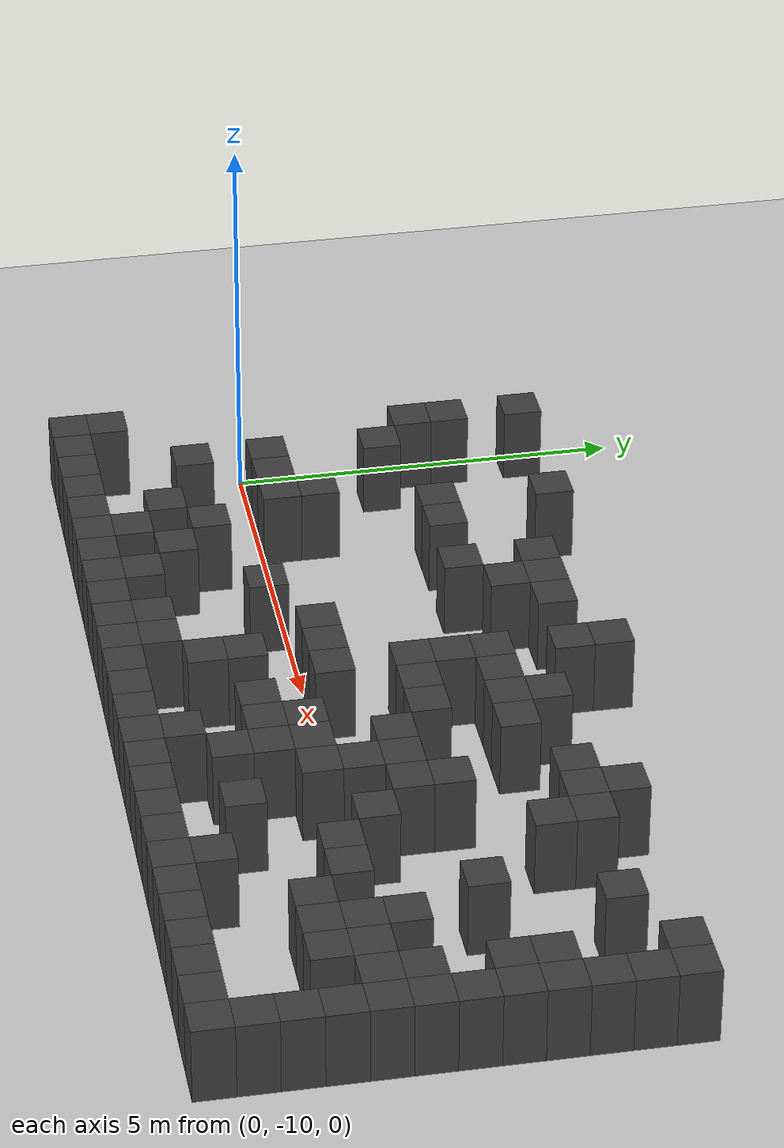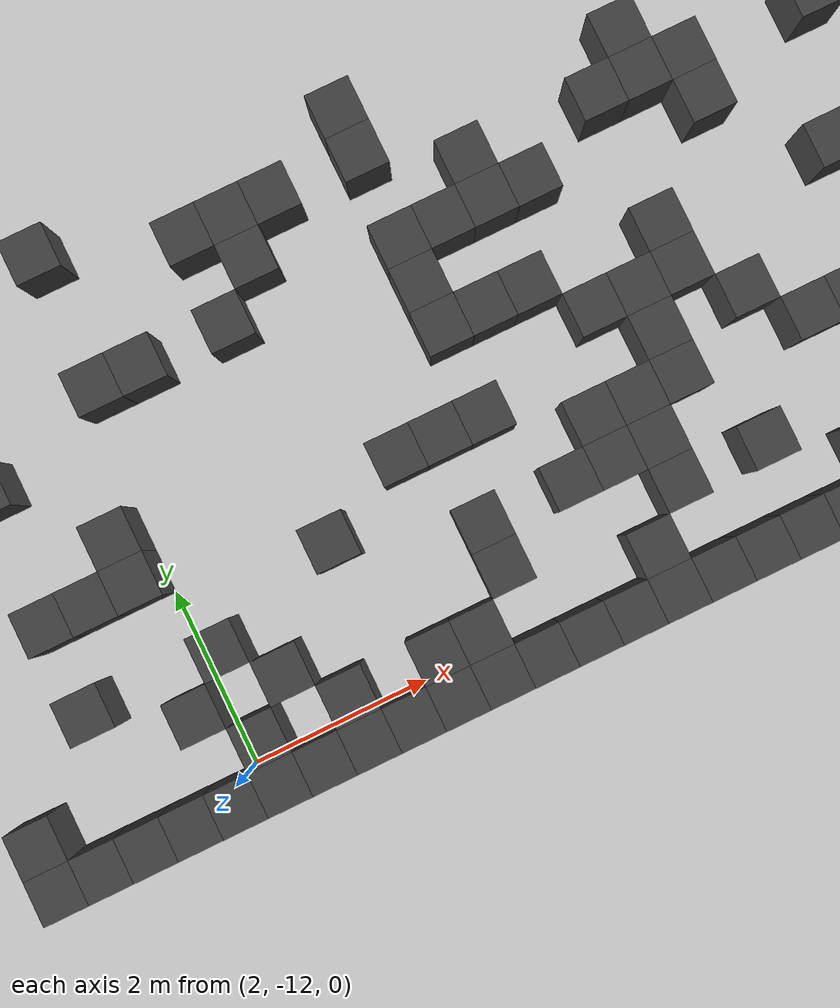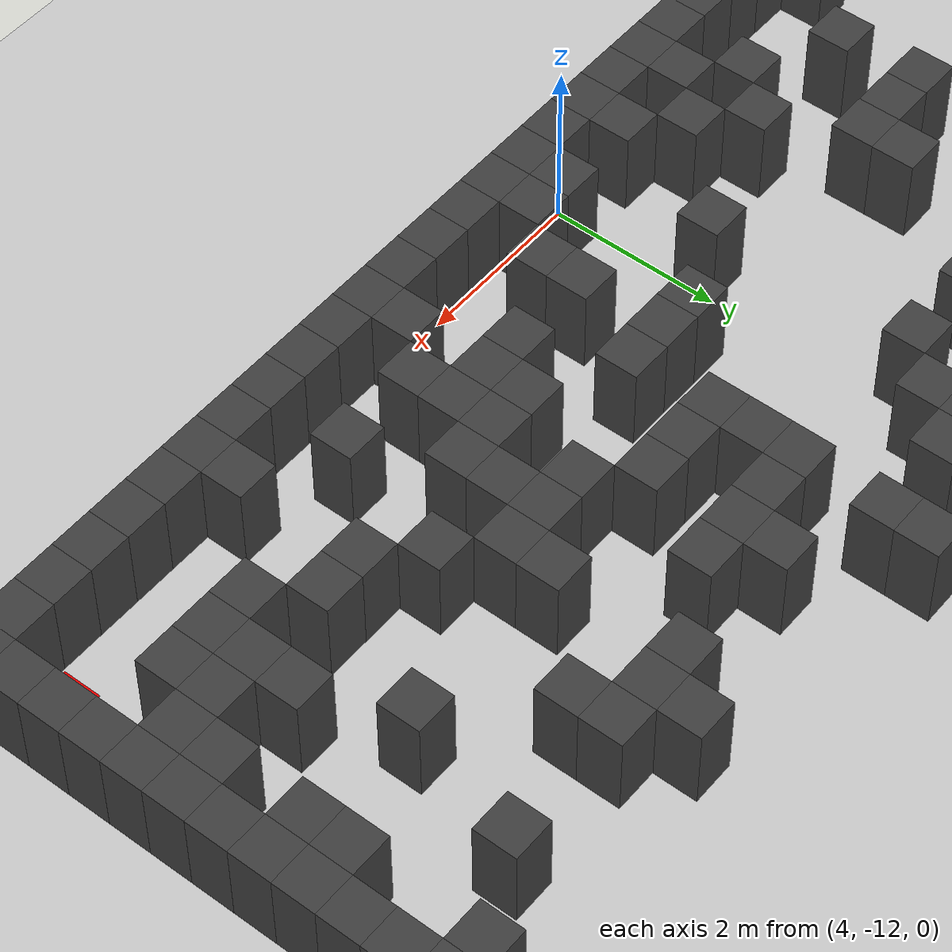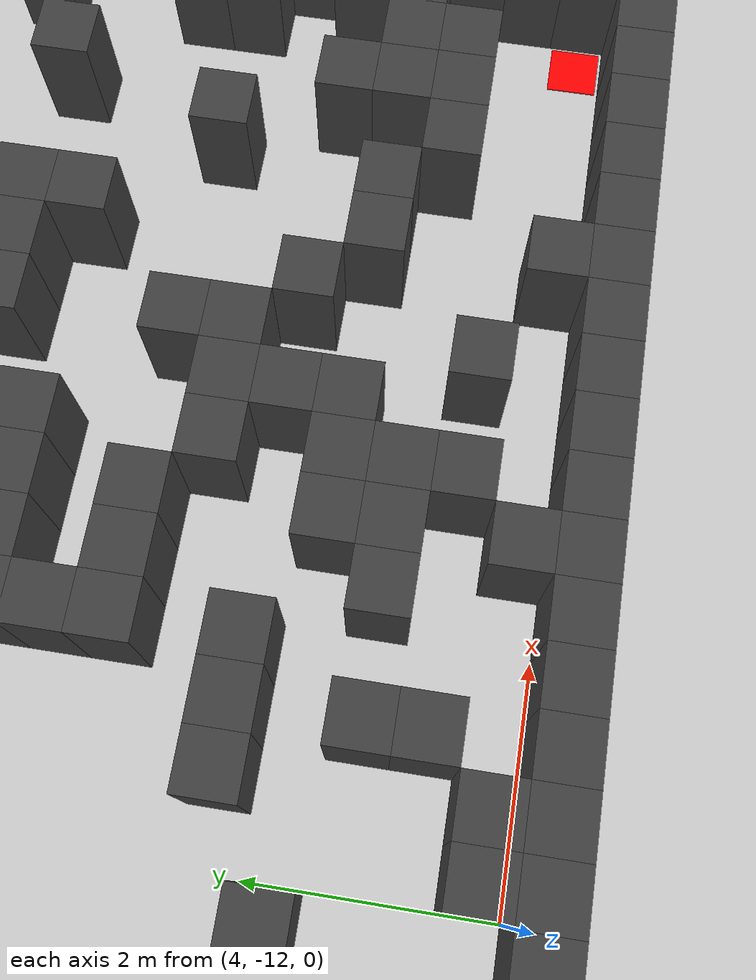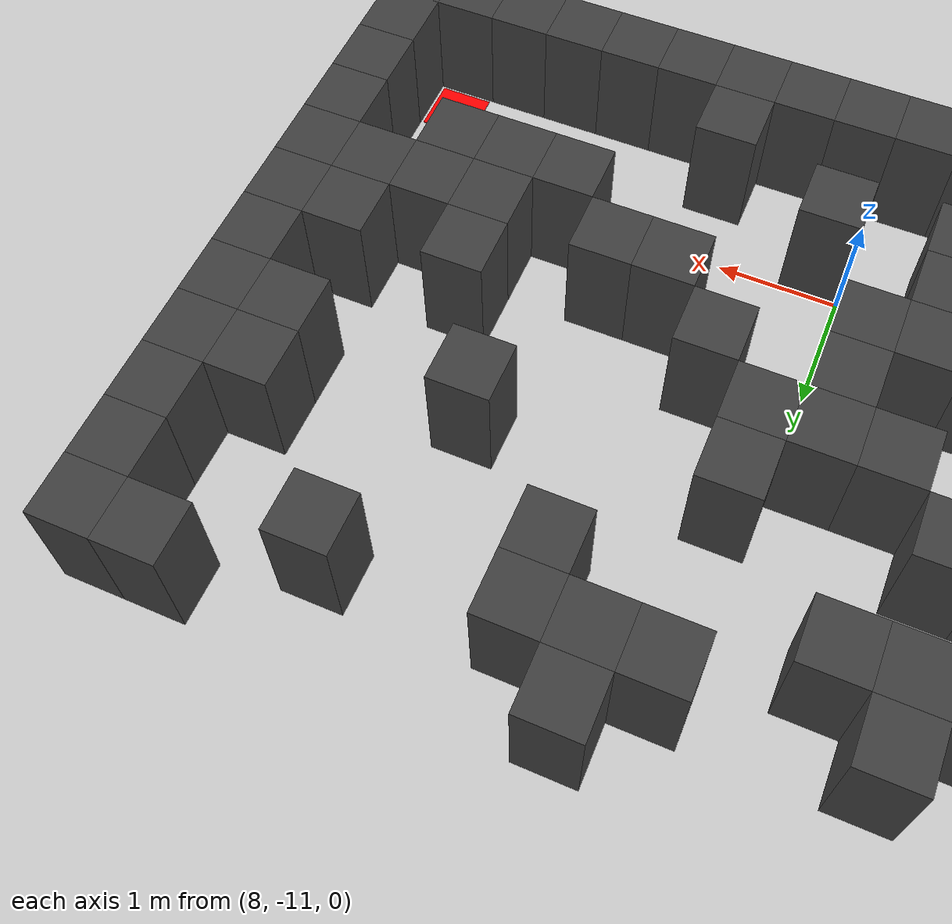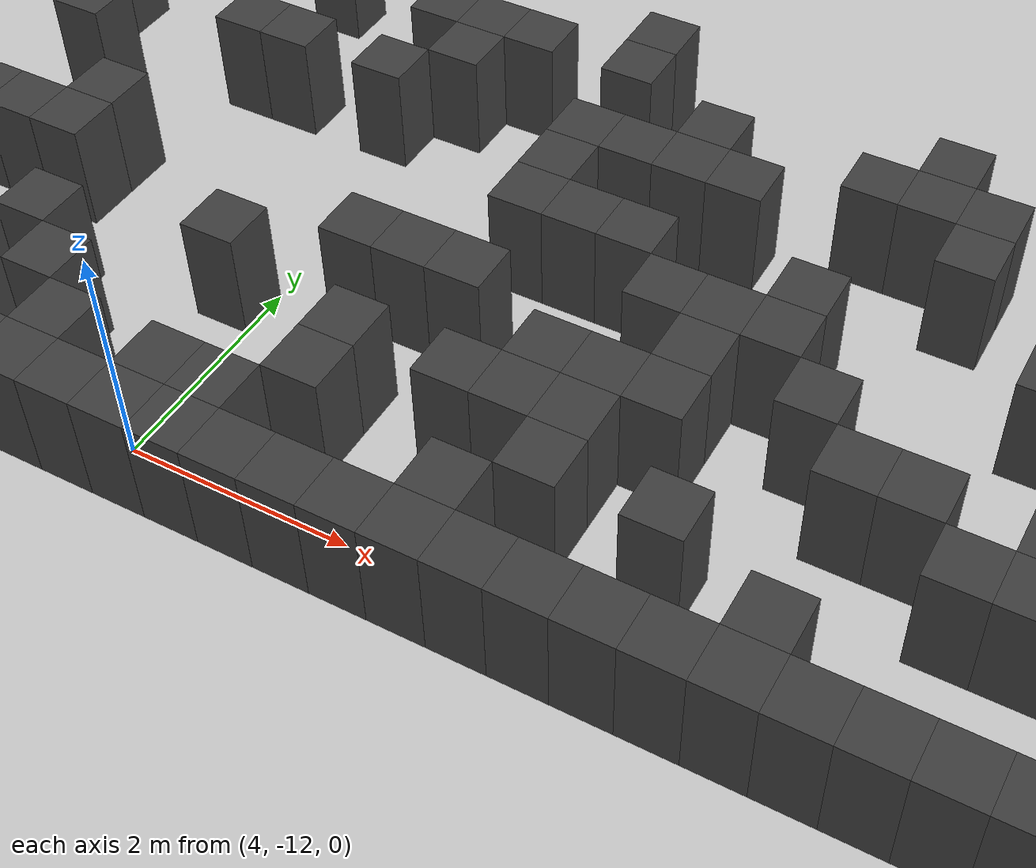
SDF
<sdf version="1.7">
 <world name="map_4492">
  <model name="ground_plane">
   <static>true</static>
   <link name="link">
    <collision name="collision">
     <geometry><plane><normal>0 0 1</normal><size>200 200</size></plane></geometry>
    </collision>
    <visual name="visual">
     <geometry><plane><normal>0 0 1</normal><size>200 200</size></plane></geometry>
     <material><ambient>0.8 0.8 0.8 1</ambient><diffuse>0.8 0.8 0.8 1</diffuse></material>
    </visual>
   </link>
  </model>
  <model name="maze_environment">
   <static>true</static>
   <link name="wall_479">
    <pose>0.250 -6.250 0.500 0 0 0</pose>
    <collision name="col"><geometry><box><size>0.5 0.5 1.0</size></box></geometry></collision>
    <visual name="vis">
     <geometry><box><size>0.5 0.5 1.0</size></box></geometry>
     <material><ambient>0.15 0.15 0.15 1</ambient><diffuse>0.25 0.25 0.25 1</diffuse></material>
    </visual>
   </link>
   <link name="wall_480">
    <pose>2.250 -6.250 0.500 0 0 0</pose>
    <collision name="col"><geometry><box><size>0.5 0.5 1.0</size></box></geometry></collision>
    <visual name="vis">
     <geometry><box><size>0.5 0.5 1.0</size></box></geometry>
     <material><ambient>0.15 0.15 0.15 1</ambient><diffuse>0.25 0.25 0.25 1</diffuse></material>
    </visual>
   </link>
   <link name="wall_481">
    <pose>5.750 -6.250 0.500 0 0 0</pose>
    <collision name="col"><geometry><box><size>0.5 0.5 1.0</size></box></geometry></collision>
    <visual name="vis">
     <geometry><box><size>0.5 0.5 1.0</size></box></geometry>
     <material><ambient>0.15 0.15 0.15 1</ambient><diffuse>0.25 0.25 0.25 1</diffuse></material>
    </visual>
   </link>
   <link name="wall_489">
    <pose>3.750 -6.750 0.500 0 0 0</pose>
    <collision name="col"><geometry><box><size>0.5 0.5 1.0</size></box></geometry></collision>
    <visual name="vis">
     <geometry><box><size>0.5 0.5 1.0</size></box></geometry>
     <material><ambient>0.15 0.15 0.15 1</ambient><diffuse>0.25 0.25 0.25 1</diffuse></material>
    </visual>
   </link>
   <link name="wall_490">
    <pose>4.250 -6.750 0.500 0 0 0</pose>
    <collision name="col"><geometry><box><size>0.5 0.5 1.0</size></box></geometry></collision>
    <visual name="vis">
     <geometry><box><size>0.5 0.5 1.0</size></box></geometry>
     <material><ambient>0.15 0.15 0.15 1</ambient><diffuse>0.25 0.25 0.25 1</diffuse></material>
    </visual>
   </link>
   <link name="wall_491">
    <pose>4.750 -6.750 0.500 0 0 0</pose>
    <collision name="col"><geometry><box><size>0.5 0.5 1.0</size></box></geometry></collision>
    <visual name="vis">
     <geometry><box><size>0.5 0.5 1.0</size></box></geometry>
     <material><ambient>0.15 0.15 0.15 1</ambient><diffuse>0.25 0.25 0.25 1</diffuse></material>
    </visual>
   </link>
   <link name="wall_492">
    <pose>5.750 -6.750 0.500 0 0 0</pose>
    <collision name="col"><geometry><box><size>0.5 0.5 1.0</size></box></geometry></collision>
    <visual name="vis">
     <geometry><box><size>0.5 0.5 1.0</size></box></geometry>
     <material><ambient>0.15 0.15 0.15 1</ambient><diffuse>0.25 0.25 0.25 1</diffuse></material>
    </visual>
   </link>
   <link name="wall_493">
    <pose>8.750 -6.750 0.500 0 0 0</pose>
    <collision name="col"><geometry><box><size>0.5 0.5 1.0</size></box></geometry></collision>
    <visual name="vis">
     <geometry><box><size>0.5 0.5 1.0</size></box></geometry>
     <material><ambient>0.15 0.15 0.15 1</ambient><diffuse>0.25 0.25 0.25 1</diffuse></material>
    </visual>
   </link>
   <link name="wall_494">
    <pose>11.750 -6.750 0.500 0 0 0</pose>
    <collision name="col"><geometry><box><size>0.5 0.5 1.0</size></box></geometry></collision>
    <visual name="vis">
     <geometry><box><size>0.5 0.5 1.0</size></box></geometry>
     <material><ambient>0.15 0.15 0.15 1</ambient><diffuse>0.25 0.25 0.25 1</diffuse></material>
    </visual>
   </link>
   <link name="wall_495">
    <pose>12.250 -6.750 0.500 0 0 0</pose>
    <collision name="col"><geometry><box><size>0.5 0.5 1.0</size></box></geometry></collision>
    <visual name="vis">
     <geometry><box><size>0.5 0.5 1.0</size></box></geometry>
     <material><ambient>0.15 0.15 0.15 1</ambient><diffuse>0.25 0.25 0.25 1</diffuse></material>
    </visual>
   </link>
   <link name="wall_502">
    <pose>0.250 -7.250 0.500 0 0 0</pose>
    <collision name="col"><geometry><box><size>0.5 0.5 1.0</size></box></geometry></collision>
    <visual name="vis">
     <geometry><box><size>0.5 0.5 1.0</size></box></geometry>
     <material><ambient>0.15 0.15 0.15 1</ambient><diffuse>0.25 0.25 0.25 1</diffuse></material>
    </visual>
   </link>
   <link name="wall_503">
    <pose>4.250 -7.250 0.500 0 0 0</pose>
    <collision name="col"><geometry><box><size>0.5 0.5 1.0</size></box></geometry></collision>
    <visual name="vis">
     <geometry><box><size>0.5 0.5 1.0</size></box></geometry>
     <material><ambient>0.15 0.15 0.15 1</ambient><diffuse>0.25 0.25 0.25 1</diffuse></material>
    </visual>
   </link>
   <link name="wall_504">
    <pose>6.750 -7.250 0.500 0 0 0</pose>
    <collision name="col"><geometry><box><size>0.5 0.5 1.0</size></box></geometry></collision>
    <visual name="vis">
     <geometry><box><size>0.5 0.5 1.0</size></box></geometry>
     <material><ambient>0.15 0.15 0.15 1</ambient><diffuse>0.25 0.25 0.25 1</diffuse></material>
    </visual>
   </link>
   <link name="wall_505">
    <pose>8.250 -7.250 0.500 0 0 0</pose>
    <collision name="col"><geometry><box><size>0.5 0.5 1.0</size></box></geometry></collision>
    <visual name="vis">
     <geometry><box><size>0.5 0.5 1.0</size></box></geometry>
     <material><ambient>0.15 0.15 0.15 1</ambient><diffuse>0.25 0.25 0.25 1</diffuse></material>
    </visual>
   </link>
   <link name="wall_506">
    <pose>8.750 -7.250 0.500 0 0 0</pose>
    <collision name="col"><geometry><box><size>0.5 0.5 1.0</size></box></geometry></collision>
    <visual name="vis">
     <geometry><box><size>0.5 0.5 1.0</size></box></geometry>
     <material><ambient>0.15 0.15 0.15 1</ambient><diffuse>0.25 0.25 0.25 1</diffuse></material>
    </visual>
   </link>
   <link name="wall_507">
    <pose>9.250 -7.250 0.500 0 0 0</pose>
    <collision name="col"><geometry><box><size>0.5 0.5 1.0</size></box></geometry></collision>
    <visual name="vis">
     <geometry><box><size>0.5 0.5 1.0</size></box></geometry>
     <material><ambient>0.15 0.15 0.15 1</ambient><diffuse>0.25 0.25 0.25 1</diffuse></material>
    </visual>
   </link>
   <link name="wall_508">
    <pose>10.750 -7.250 0.500 0 0 0</pose>
    <collision name="col"><geometry><box><size>0.5 0.5 1.0</size></box></geometry></collision>
    <visual name="vis">
     <geometry><box><size>0.5 0.5 1.0</size></box></geometry>
     <material><ambient>0.15 0.15 0.15 1</ambient><diffuse>0.25 0.25 0.25 1</diffuse></material>
    </visual>
   </link>
   <link name="wall_509">
    <pose>12.250 -7.250 0.500 0 0 0</pose>
    <collision name="col"><geometry><box><size>0.5 0.5 1.0</size></box></geometry></collision>
    <visual name="vis">
     <geometry><box><size>0.5 0.5 1.0</size></box></geometry>
     <material><ambient>0.15 0.15 0.15 1</ambient><diffuse>0.25 0.25 0.25 1</diffuse></material>
    </visual>
   </link>
   <link name="wall_521">
    <pose>0.250 -7.750 0.500 0 0 0</pose>
    <collision name="col"><geometry><box><size>0.5 0.5 1.0</size></box></geometry></collision>
    <visual name="vis">
     <geometry><box><size>0.5 0.5 1.0</size></box></geometry>
     <material><ambient>0.15 0.15 0.15 1</ambient><diffuse>0.25 0.25 0.25 1</diffuse></material>
    </visual>
   </link>
   <link name="wall_522">
    <pose>2.250 -7.750 0.500 0 0 0</pose>
    <collision name="col"><geometry><box><size>0.5 0.5 1.0</size></box></geometry></collision>
    <visual name="vis">
     <geometry><box><size>0.5 0.5 1.0</size></box></geometry>
     <material><ambient>0.15 0.15 0.15 1</ambient><diffuse>0.25 0.25 0.25 1</diffuse></material>
    </visual>
   </link>
   <link name="wall_523">
    <pose>2.750 -7.750 0.500 0 0 0</pose>
    <collision name="col"><geometry><box><size>0.5 0.5 1.0</size></box></geometry></collision>
    <visual name="vis">
     <geometry><box><size>0.5 0.5 1.0</size></box></geometry>
     <material><ambient>0.15 0.15 0.15 1</ambient><diffuse>0.25 0.25 0.25 1</diffuse></material>
    </visual>
   </link>
   <link name="wall_524">
    <pose>3.750 -7.750 0.500 0 0 0</pose>
    <collision name="col"><geometry><box><size>0.5 0.5 1.0</size></box></geometry></collision>
    <visual name="vis">
     <geometry><box><size>0.5 0.5 1.0</size></box></geometry>
     <material><ambient>0.15 0.15 0.15 1</ambient><diffuse>0.25 0.25 0.25 1</diffuse></material>
    </visual>
   </link>
   <link name="wall_525">
    <pose>5.750 -7.750 0.500 0 0 0</pose>
    <collision name="col"><geometry><box><size>0.5 0.5 1.0</size></box></geometry></collision>
    <visual name="vis">
     <geometry><box><size>0.5 0.5 1.0</size></box></geometry>
     <material><ambient>0.15 0.15 0.15 1</ambient><diffuse>0.25 0.25 0.25 1</diffuse></material>
    </visual>
   </link>
   <link name="wall_526">
    <pose>6.250 -7.750 0.500 0 0 0</pose>
    <collision name="col"><geometry><box><size>0.5 0.5 1.0</size></box></geometry></collision>
    <visual name="vis">
     <geometry><box><size>0.5 0.5 1.0</size></box></geometry>
     <material><ambient>0.15 0.15 0.15 1</ambient><diffuse>0.25 0.25 0.25 1</diffuse></material>
    </visual>
   </link>
   <link name="wall_527">
    <pose>6.750 -7.750 0.500 0 0 0</pose>
    <collision name="col"><geometry><box><size>0.5 0.5 1.0</size></box></geometry></collision>
    <visual name="vis">
     <geometry><box><size>0.5 0.5 1.0</size></box></geometry>
     <material><ambient>0.15 0.15 0.15 1</ambient><diffuse>0.25 0.25 0.25 1</diffuse></material>
    </visual>
   </link>
   <link name="wall_528">
    <pose>7.250 -7.750 0.500 0 0 0</pose>
    <collision name="col"><geometry><box><size>0.5 0.5 1.0</size></box></geometry></collision>
    <visual name="vis">
     <geometry><box><size>0.5 0.5 1.0</size></box></geometry>
     <material><ambient>0.15 0.15 0.15 1</ambient><diffuse>0.25 0.25 0.25 1</diffuse></material>
    </visual>
   </link>
   <link name="wall_529">
    <pose>9.250 -7.750 0.500 0 0 0</pose>
    <collision name="col"><geometry><box><size>0.5 0.5 1.0</size></box></geometry></collision>
    <visual name="vis">
     <geometry><box><size>0.5 0.5 1.0</size></box></geometry>
     <material><ambient>0.15 0.15 0.15 1</ambient><diffuse>0.25 0.25 0.25 1</diffuse></material>
    </visual>
   </link>
   <link name="wall_530">
    <pose>12.250 -7.750 0.500 0 0 0</pose>
    <collision name="col"><geometry><box><size>0.5 0.5 1.0</size></box></geometry></collision>
    <visual name="vis">
     <geometry><box><size>0.5 0.5 1.0</size></box></geometry>
     <material><ambient>0.15 0.15 0.15 1</ambient><diffuse>0.25 0.25 0.25 1</diffuse></material>
    </visual>
   </link>
   <link name="wall_535">
    <pose>0.750 -8.250 0.500 0 0 0</pose>
    <collision name="col"><geometry><box><size>0.5 0.5 1.0</size></box></geometry></collision>
    <visual name="vis">
     <geometry><box><size>0.5 0.5 1.0</size></box></geometry>
     <material><ambient>0.15 0.15 0.15 1</ambient><diffuse>0.25 0.25 0.25 1</diffuse></material>
    </visual>
   </link>
   <link name="wall_536">
    <pose>5.750 -8.250 0.500 0 0 0</pose>
    <collision name="col"><geometry><box><size>0.5 0.5 1.0</size></box></geometry></collision>
    <visual name="vis">
     <geometry><box><size>0.5 0.5 1.0</size></box></geometry>
     <material><ambient>0.15 0.15 0.15 1</ambient><diffuse>0.25 0.25 0.25 1</diffuse></material>
    </visual>
   </link>
   <link name="wall_537">
    <pose>11.750 -8.250 0.500 0 0 0</pose>
    <collision name="col"><geometry><box><size>0.5 0.5 1.0</size></box></geometry></collision>
    <visual name="vis">
     <geometry><box><size>0.5 0.5 1.0</size></box></geometry>
     <material><ambient>0.15 0.15 0.15 1</ambient><diffuse>0.25 0.25 0.25 1</diffuse></material>
    </visual>
   </link>
   <link name="wall_538">
    <pose>12.250 -8.250 0.500 0 0 0</pose>
    <collision name="col"><geometry><box><size>0.5 0.5 1.0</size></box></geometry></collision>
    <visual name="vis">
     <geometry><box><size>0.5 0.5 1.0</size></box></geometry>
     <material><ambient>0.15 0.15 0.15 1</ambient><diffuse>0.25 0.25 0.25 1</diffuse></material>
    </visual>
   </link>
   <link name="wall_545">
    <pose>5.750 -8.750 0.500 0 0 0</pose>
    <collision name="col"><geometry><box><size>0.5 0.5 1.0</size></box></geometry></collision>
    <visual name="vis">
     <geometry><box><size>0.5 0.5 1.0</size></box></geometry>
     <material><ambient>0.15 0.15 0.15 1</ambient><diffuse>0.25 0.25 0.25 1</diffuse></material>
    </visual>
   </link>
   <link name="wall_546">
    <pose>6.250 -8.750 0.500 0 0 0</pose>
    <collision name="col"><geometry><box><size>0.5 0.5 1.0</size></box></geometry></collision>
    <visual name="vis">
     <geometry><box><size>0.5 0.5 1.0</size></box></geometry>
     <material><ambient>0.15 0.15 0.15 1</ambient><diffuse>0.25 0.25 0.25 1</diffuse></material>
    </visual>
   </link>
   <link name="wall_547">
    <pose>6.750 -8.750 0.500 0 0 0</pose>
    <collision name="col"><geometry><box><size>0.5 0.5 1.0</size></box></geometry></collision>
    <visual name="vis">
     <geometry><box><size>0.5 0.5 1.0</size></box></geometry>
     <material><ambient>0.15 0.15 0.15 1</ambient><diffuse>0.25 0.25 0.25 1</diffuse></material>
    </visual>
   </link>
   <link name="wall_548">
    <pose>8.250 -8.750 0.500 0 0 0</pose>
    <collision name="col"><geometry><box><size>0.5 0.5 1.0</size></box></geometry></collision>
    <visual name="vis">
     <geometry><box><size>0.5 0.5 1.0</size></box></geometry>
     <material><ambient>0.15 0.15 0.15 1</ambient><diffuse>0.25 0.25 0.25 1</diffuse></material>
    </visual>
   </link>
   <link name="wall_549">
    <pose>10.250 -8.750 0.500 0 0 0</pose>
    <collision name="col"><geometry><box><size>0.5 0.5 1.0</size></box></geometry></collision>
    <visual name="vis">
     <geometry><box><size>0.5 0.5 1.0</size></box></geometry>
     <material><ambient>0.15 0.15 0.15 1</ambient><diffuse>0.25 0.25 0.25 1</diffuse></material>
    </visual>
   </link>
   <link name="wall_550">
    <pose>11.750 -8.750 0.500 0 0 0</pose>
    <collision name="col"><geometry><box><size>0.5 0.5 1.0</size></box></geometry></collision>
    <visual name="vis">
     <geometry><box><size>0.5 0.5 1.0</size></box></geometry>
     <material><ambient>0.15 0.15 0.15 1</ambient><diffuse>0.25 0.25 0.25 1</diffuse></material>
    </visual>
   </link>
   <link name="wall_551">
    <pose>12.250 -8.750 0.500 0 0 0</pose>
    <collision name="col"><geometry><box><size>0.5 0.5 1.0</size></box></geometry></collision>
    <visual name="vis">
     <geometry><box><size>0.5 0.5 1.0</size></box></geometry>
     <material><ambient>0.15 0.15 0.15 1</ambient><diffuse>0.25 0.25 0.25 1</diffuse></material>
    </visual>
   </link>
   <link name="wall_557">
    <pose>1.750 -9.250 0.500 0 0 0</pose>
    <collision name="col"><geometry><box><size>0.5 0.5 1.0</size></box></geometry></collision>
    <visual name="vis">
     <geometry><box><size>0.5 0.5 1.0</size></box></geometry>
     <material><ambient>0.15 0.15 0.15 1</ambient><diffuse>0.25 0.25 0.25 1</diffuse></material>
    </visual>
   </link>
   <link name="wall_558">
    <pose>7.250 -9.250 0.500 0 0 0</pose>
    <collision name="col"><geometry><box><size>0.5 0.5 1.0</size></box></geometry></collision>
    <visual name="vis">
     <geometry><box><size>0.5 0.5 1.0</size></box></geometry>
     <material><ambient>0.15 0.15 0.15 1</ambient><diffuse>0.25 0.25 0.25 1</diffuse></material>
    </visual>
   </link>
   <link name="wall_559">
    <pose>7.750 -9.250 0.500 0 0 0</pose>
    <collision name="col"><geometry><box><size>0.5 0.5 1.0</size></box></geometry></collision>
    <visual name="vis">
     <geometry><box><size>0.5 0.5 1.0</size></box></geometry>
     <material><ambient>0.15 0.15 0.15 1</ambient><diffuse>0.25 0.25 0.25 1</diffuse></material>
    </visual>
   </link>
   <link name="wall_560">
    <pose>8.250 -9.250 0.500 0 0 0</pose>
    <collision name="col"><geometry><box><size>0.5 0.5 1.0</size></box></geometry></collision>
    <visual name="vis">
     <geometry><box><size>0.5 0.5 1.0</size></box></geometry>
     <material><ambient>0.15 0.15 0.15 1</ambient><diffuse>0.25 0.25 0.25 1</diffuse></material>
    </visual>
   </link>
   <link name="wall_561">
    <pose>12.250 -9.250 0.500 0 0 0</pose>
    <collision name="col"><geometry><box><size>0.5 0.5 1.0</size></box></geometry></collision>
    <visual name="vis">
     <geometry><box><size>0.5 0.5 1.0</size></box></geometry>
     <material><ambient>0.15 0.15 0.15 1</ambient><diffuse>0.25 0.25 0.25 1</diffuse></material>
    </visual>
   </link>
   <link name="wall_570">
    <pose>0.750 -9.750 0.500 0 0 0</pose>
    <collision name="col"><geometry><box><size>0.5 0.5 1.0</size></box></geometry></collision>
    <visual name="vis">
     <geometry><box><size>0.5 0.5 1.0</size></box></geometry>
     <material><ambient>0.15 0.15 0.15 1</ambient><diffuse>0.25 0.25 0.25 1</diffuse></material>
    </visual>
   </link>
   <link name="wall_571">
    <pose>1.250 -9.750 0.500 0 0 0</pose>
    <collision name="col"><geometry><box><size>0.5 0.5 1.0</size></box></geometry></collision>
    <visual name="vis">
     <geometry><box><size>0.5 0.5 1.0</size></box></geometry>
     <material><ambient>0.15 0.15 0.15 1</ambient><diffuse>0.25 0.25 0.25 1</diffuse></material>
    </visual>
   </link>
   <link name="wall_572">
    <pose>1.750 -9.750 0.500 0 0 0</pose>
    <collision name="col"><geometry><box><size>0.5 0.5 1.0</size></box></geometry></collision>
    <visual name="vis">
     <geometry><box><size>0.5 0.5 1.0</size></box></geometry>
     <material><ambient>0.15 0.15 0.15 1</ambient><diffuse>0.25 0.25 0.25 1</diffuse></material>
    </visual>
   </link>
   <link name="wall_573">
    <pose>4.750 -9.750 0.500 0 0 0</pose>
    <collision name="col"><geometry><box><size>0.5 0.5 1.0</size></box></geometry></collision>
    <visual name="vis">
     <geometry><box><size>0.5 0.5 1.0</size></box></geometry>
     <material><ambient>0.15 0.15 0.15 1</ambient><diffuse>0.25 0.25 0.25 1</diffuse></material>
    </visual>
   </link>
   <link name="wall_574">
    <pose>5.250 -9.750 0.500 0 0 0</pose>
    <collision name="col"><geometry><box><size>0.5 0.5 1.0</size></box></geometry></collision>
    <visual name="vis">
     <geometry><box><size>0.5 0.5 1.0</size></box></geometry>
     <material><ambient>0.15 0.15 0.15 1</ambient><diffuse>0.25 0.25 0.25 1</diffuse></material>
    </visual>
   </link>
   <link name="wall_575">
    <pose>5.750 -9.750 0.500 0 0 0</pose>
    <collision name="col"><geometry><box><size>0.5 0.5 1.0</size></box></geometry></collision>
    <visual name="vis">
     <geometry><box><size>0.5 0.5 1.0</size></box></geometry>
     <material><ambient>0.15 0.15 0.15 1</ambient><diffuse>0.25 0.25 0.25 1</diffuse></material>
    </visual>
   </link>
   <link name="wall_576">
    <pose>7.750 -9.750 0.500 0 0 0</pose>
    <collision name="col"><geometry><box><size>0.5 0.5 1.0</size></box></geometry></collision>
    <visual name="vis">
     <geometry><box><size>0.5 0.5 1.0</size></box></geometry>
     <material><ambient>0.15 0.15 0.15 1</ambient><diffuse>0.25 0.25 0.25 1</diffuse></material>
    </visual>
   </link>
   <link name="wall_577">
    <pose>8.750 -9.750 0.500 0 0 0</pose>
    <collision name="col"><geometry><box><size>0.5 0.5 1.0</size></box></geometry></collision>
    <visual name="vis">
     <geometry><box><size>0.5 0.5 1.0</size></box></geometry>
     <material><ambient>0.15 0.15 0.15 1</ambient><diffuse>0.25 0.25 0.25 1</diffuse></material>
    </visual>
   </link>
   <link name="wall_578">
    <pose>10.750 -9.750 0.500 0 0 0</pose>
    <collision name="col"><geometry><box><size>0.5 0.5 1.0</size></box></geometry></collision>
    <visual name="vis">
     <geometry><box><size>0.5 0.5 1.0</size></box></geometry>
     <material><ambient>0.15 0.15 0.15 1</ambient><diffuse>0.25 0.25 0.25 1</diffuse></material>
    </visual>
   </link>
   <link name="wall_579">
    <pose>11.750 -9.750 0.500 0 0 0</pose>
    <collision name="col"><geometry><box><size>0.5 0.5 1.0</size></box></geometry></collision>
    <visual name="vis">
     <geometry><box><size>0.5 0.5 1.0</size></box></geometry>
     <material><ambient>0.15 0.15 0.15 1</ambient><diffuse>0.25 0.25 0.25 1</diffuse></material>
    </visual>
   </link>
   <link name="wall_580">
    <pose>12.250 -9.750 0.500 0 0 0</pose>
    <collision name="col"><geometry><box><size>0.5 0.5 1.0</size></box></geometry></collision>
    <visual name="vis">
     <geometry><box><size>0.5 0.5 1.0</size></box></geometry>
     <material><ambient>0.15 0.15 0.15 1</ambient><diffuse>0.25 0.25 0.25 1</diffuse></material>
    </visual>
   </link>
   <link name="wall_591">
    <pose>3.750 -10.250 0.500 0 0 0</pose>
    <collision name="col"><geometry><box><size>0.5 0.5 1.0</size></box></geometry></collision>
    <visual name="vis">
     <geometry><box><size>0.5 0.5 1.0</size></box></geometry>
     <material><ambient>0.15 0.15 0.15 1</ambient><diffuse>0.25 0.25 0.25 1</diffuse></material>
    </visual>
   </link>
   <link name="wall_592">
    <pose>6.750 -10.250 0.500 0 0 0</pose>
    <collision name="col"><geometry><box><size>0.5 0.5 1.0</size></box></geometry></collision>
    <visual name="vis">
     <geometry><box><size>0.5 0.5 1.0</size></box></geometry>
     <material><ambient>0.15 0.15 0.15 1</ambient><diffuse>0.25 0.25 0.25 1</diffuse></material>
    </visual>
   </link>
   <link name="wall_593">
    <pose>7.250 -10.250 0.500 0 0 0</pose>
    <collision name="col"><geometry><box><size>0.5 0.5 1.0</size></box></geometry></collision>
    <visual name="vis">
     <geometry><box><size>0.5 0.5 1.0</size></box></geometry>
     <material><ambient>0.15 0.15 0.15 1</ambient><diffuse>0.25 0.25 0.25 1</diffuse></material>
    </visual>
   </link>
   <link name="wall_594">
    <pose>7.750 -10.250 0.500 0 0 0</pose>
    <collision name="col"><geometry><box><size>0.5 0.5 1.0</size></box></geometry></collision>
    <visual name="vis">
     <geometry><box><size>0.5 0.5 1.0</size></box></geometry>
     <material><ambient>0.15 0.15 0.15 1</ambient><diffuse>0.25 0.25 0.25 1</diffuse></material>
    </visual>
   </link>
   <link name="wall_595">
    <pose>9.250 -10.250 0.500 0 0 0</pose>
    <collision name="col"><geometry><box><size>0.5 0.5 1.0</size></box></geometry></collision>
    <visual name="vis">
     <geometry><box><size>0.5 0.5 1.0</size></box></geometry>
     <material><ambient>0.15 0.15 0.15 1</ambient><diffuse>0.25 0.25 0.25 1</diffuse></material>
    </visual>
   </link>
   <link name="wall_596">
    <pose>9.750 -10.250 0.500 0 0 0</pose>
    <collision name="col"><geometry><box><size>0.5 0.5 1.0</size></box></geometry></collision>
    <visual name="vis">
     <geometry><box><size>0.5 0.5 1.0</size></box></geometry>
     <material><ambient>0.15 0.15 0.15 1</ambient><diffuse>0.25 0.25 0.25 1</diffuse></material>
    </visual>
   </link>
   <link name="wall_597">
    <pose>10.750 -10.250 0.500 0 0 0</pose>
    <collision name="col"><geometry><box><size>0.5 0.5 1.0</size></box></geometry></collision>
    <visual name="vis">
     <geometry><box><size>0.5 0.5 1.0</size></box></geometry>
     <material><ambient>0.15 0.15 0.15 1</ambient><diffuse>0.25 0.25 0.25 1</diffuse></material>
    </visual>
   </link>
   <link name="wall_598">
    <pose>11.250 -10.250 0.500 0 0 0</pose>
    <collision name="col"><geometry><box><size>0.5 0.5 1.0</size></box></geometry></collision>
    <visual name="vis">
     <geometry><box><size>0.5 0.5 1.0</size></box></geometry>
     <material><ambient>0.15 0.15 0.15 1</ambient><diffuse>0.25 0.25 0.25 1</diffuse></material>
    </visual>
   </link>
   <link name="wall_599">
    <pose>11.750 -10.250 0.500 0 0 0</pose>
    <collision name="col"><geometry><box><size>0.5 0.5 1.0</size></box></geometry></collision>
    <visual name="vis">
     <geometry><box><size>0.5 0.5 1.0</size></box></geometry>
     <material><ambient>0.15 0.15 0.15 1</ambient><diffuse>0.25 0.25 0.25 1</diffuse></material>
    </visual>
   </link>
   <link name="wall_600">
    <pose>12.250 -10.250 0.500 0 0 0</pose>
    <collision name="col"><geometry><box><size>0.5 0.5 1.0</size></box></geometry></collision>
    <visual name="vis">
     <geometry><box><size>0.5 0.5 1.0</size></box></geometry>
     <material><ambient>0.15 0.15 0.15 1</ambient><diffuse>0.25 0.25 0.25 1</diffuse></material>
    </visual>
   </link>
   <link name="wall_608">
    <pose>0.750 -10.750 0.500 0 0 0</pose>
    <collision name="col"><geometry><box><size>0.5 0.5 1.0</size></box></geometry></collision>
    <visual name="vis">
     <geometry><box><size>0.5 0.5 1.0</size></box></geometry>
     <material><ambient>0.15 0.15 0.15 1</ambient><diffuse>0.25 0.25 0.25 1</diffuse></material>
    </visual>
   </link>
   <link name="wall_609">
    <pose>2.250 -10.750 0.500 0 0 0</pose>
    <collision name="col"><geometry><box><size>0.5 0.5 1.0</size></box></geometry></collision>
    <visual name="vis">
     <geometry><box><size>0.5 0.5 1.0</size></box></geometry>
     <material><ambient>0.15 0.15 0.15 1</ambient><diffuse>0.25 0.25 0.25 1</diffuse></material>
    </visual>
   </link>
   <link name="wall_610">
    <pose>5.250 -10.750 0.500 0 0 0</pose>
    <collision name="col"><geometry><box><size>0.5 0.5 1.0</size></box></geometry></collision>
    <visual name="vis">
     <geometry><box><size>0.5 0.5 1.0</size></box></geometry>
     <material><ambient>0.15 0.15 0.15 1</ambient><diffuse>0.25 0.25 0.25 1</diffuse></material>
    </visual>
   </link>
   <link name="wall_611">
    <pose>6.250 -10.750 0.500 0 0 0</pose>
    <collision name="col"><geometry><box><size>0.5 0.5 1.0</size></box></geometry></collision>
    <visual name="vis">
     <geometry><box><size>0.5 0.5 1.0</size></box></geometry>
     <material><ambient>0.15 0.15 0.15 1</ambient><diffuse>0.25 0.25 0.25 1</diffuse></material>
    </visual>
   </link>
   <link name="wall_612">
    <pose>6.750 -10.750 0.500 0 0 0</pose>
    <collision name="col"><geometry><box><size>0.5 0.5 1.0</size></box></geometry></collision>
    <visual name="vis">
     <geometry><box><size>0.5 0.5 1.0</size></box></geometry>
     <material><ambient>0.15 0.15 0.15 1</ambient><diffuse>0.25 0.25 0.25 1</diffuse></material>
    </visual>
   </link>
   <link name="wall_613">
    <pose>7.250 -10.750 0.500 0 0 0</pose>
    <collision name="col"><geometry><box><size>0.5 0.5 1.0</size></box></geometry></collision>
    <visual name="vis">
     <geometry><box><size>0.5 0.5 1.0</size></box></geometry>
     <material><ambient>0.15 0.15 0.15 1</ambient><diffuse>0.25 0.25 0.25 1</diffuse></material>
    </visual>
   </link>
   <link name="wall_614">
    <pose>10.250 -10.750 0.500 0 0 0</pose>
    <collision name="col"><geometry><box><size>0.5 0.5 1.0</size></box></geometry></collision>
    <visual name="vis">
     <geometry><box><size>0.5 0.5 1.0</size></box></geometry>
     <material><ambient>0.15 0.15 0.15 1</ambient><diffuse>0.25 0.25 0.25 1</diffuse></material>
    </visual>
   </link>
   <link name="wall_615">
    <pose>10.750 -10.750 0.500 0 0 0</pose>
    <collision name="col"><geometry><box><size>0.5 0.5 1.0</size></box></geometry></collision>
    <visual name="vis">
     <geometry><box><size>0.5 0.5 1.0</size></box></geometry>
     <material><ambient>0.15 0.15 0.15 1</ambient><diffuse>0.25 0.25 0.25 1</diffuse></material>
    </visual>
   </link>
   <link name="wall_616">
    <pose>11.250 -10.750 0.500 0 0 0</pose>
    <collision name="col"><geometry><box><size>0.5 0.5 1.0</size></box></geometry></collision>
    <visual name="vis">
     <geometry><box><size>0.5 0.5 1.0</size></box></geometry>
     <material><ambient>0.15 0.15 0.15 1</ambient><diffuse>0.25 0.25 0.25 1</diffuse></material>
    </visual>
   </link>
   <link name="wall_617">
    <pose>12.250 -10.750 0.500 0 0 0</pose>
    <collision name="col"><geometry><box><size>0.5 0.5 1.0</size></box></geometry></collision>
    <visual name="vis">
     <geometry><box><size>0.5 0.5 1.0</size></box></geometry>
     <material><ambient>0.15 0.15 0.15 1</ambient><diffuse>0.25 0.25 0.25 1</diffuse></material>
    </visual>
   </link>
   <link name="wall_624">
    <pose>1.750 -11.250 0.500 0 0 0</pose>
    <collision name="col"><geometry><box><size>0.5 0.5 1.0</size></box></geometry></collision>
    <visual name="vis">
     <geometry><box><size>0.5 0.5 1.0</size></box></geometry>
     <material><ambient>0.15 0.15 0.15 1</ambient><diffuse>0.25 0.25 0.25 1</diffuse></material>
    </visual>
   </link>
   <link name="wall_625">
    <pose>2.750 -11.250 0.500 0 0 0</pose>
    <collision name="col"><geometry><box><size>0.5 0.5 1.0</size></box></geometry></collision>
    <visual name="vis">
     <geometry><box><size>0.5 0.5 1.0</size></box></geometry>
     <material><ambient>0.15 0.15 0.15 1</ambient><diffuse>0.25 0.25 0.25 1</diffuse></material>
    </visual>
   </link>
   <link name="wall_626">
    <pose>5.250 -11.250 0.500 0 0 0</pose>
    <collision name="col"><geometry><box><size>0.5 0.5 1.0</size></box></geometry></collision>
    <visual name="vis">
     <geometry><box><size>0.5 0.5 1.0</size></box></geometry>
     <material><ambient>0.15 0.15 0.15 1</ambient><diffuse>0.25 0.25 0.25 1</diffuse></material>
    </visual>
   </link>
   <link name="wall_627">
    <pose>7.250 -11.250 0.500 0 0 0</pose>
    <collision name="col"><geometry><box><size>0.5 0.5 1.0</size></box></geometry></collision>
    <visual name="vis">
     <geometry><box><size>0.5 0.5 1.0</size></box></geometry>
     <material><ambient>0.15 0.15 0.15 1</ambient><diffuse>0.25 0.25 0.25 1</diffuse></material>
    </visual>
   </link>
   <link name="wall_628">
    <pose>8.250 -11.250 0.500 0 0 0</pose>
    <collision name="col"><geometry><box><size>0.5 0.5 1.0</size></box></geometry></collision>
    <visual name="vis">
     <geometry><box><size>0.5 0.5 1.0</size></box></geometry>
     <material><ambient>0.15 0.15 0.15 1</ambient><diffuse>0.25 0.25 0.25 1</diffuse></material>
    </visual>
   </link>
   <link name="wall_629">
    <pose>12.250 -11.250 0.500 0 0 0</pose>
    <collision name="col"><geometry><box><size>0.5 0.5 1.0</size></box></geometry></collision>
    <visual name="vis">
     <geometry><box><size>0.5 0.5 1.0</size></box></geometry>
     <material><ambient>0.15 0.15 0.15 1</ambient><diffuse>0.25 0.25 0.25 1</diffuse></material>
    </visual>
   </link>
   <link name="wall_633">
    <pose>-0.250 -11.750 0.500 0 0 0</pose>
    <collision name="col"><geometry><box><size>0.5 0.5 1.0</size></box></geometry></collision>
    <visual name="vis">
     <geometry><box><size>0.5 0.5 1.0</size></box></geometry>
     <material><ambient>0.15 0.15 0.15 1</ambient><diffuse>0.25 0.25 0.25 1</diffuse></material>
    </visual>
   </link>
   <link name="wall_634">
    <pose>2.250 -11.750 0.500 0 0 0</pose>
    <collision name="col"><geometry><box><size>0.5 0.5 1.0</size></box></geometry></collision>
    <visual name="vis">
     <geometry><box><size>0.5 0.5 1.0</size></box></geometry>
     <material><ambient>0.15 0.15 0.15 1</ambient><diffuse>0.25 0.25 0.25 1</diffuse></material>
    </visual>
   </link>
   <link name="wall_635">
    <pose>3.250 -11.750 0.500 0 0 0</pose>
    <collision name="col"><geometry><box><size>0.5 0.5 1.0</size></box></geometry></collision>
    <visual name="vis">
     <geometry><box><size>0.5 0.5 1.0</size></box></geometry>
     <material><ambient>0.15 0.15 0.15 1</ambient><diffuse>0.25 0.25 0.25 1</diffuse></material>
    </visual>
   </link>
   <link name="wall_636">
    <pose>4.250 -11.750 0.500 0 0 0</pose>
    <collision name="col"><geometry><box><size>0.5 0.5 1.0</size></box></geometry></collision>
    <visual name="vis">
     <geometry><box><size>0.5 0.5 1.0</size></box></geometry>
     <material><ambient>0.15 0.15 0.15 1</ambient><diffuse>0.25 0.25 0.25 1</diffuse></material>
    </visual>
   </link>
   <link name="wall_637">
    <pose>4.750 -11.750 0.500 0 0 0</pose>
    <collision name="col"><geometry><box><size>0.5 0.5 1.0</size></box></geometry></collision>
    <visual name="vis">
     <geometry><box><size>0.5 0.5 1.0</size></box></geometry>
     <material><ambient>0.15 0.15 0.15 1</ambient><diffuse>0.25 0.25 0.25 1</diffuse></material>
    </visual>
   </link>
   <link name="wall_638">
    <pose>6.750 -11.750 0.500 0 0 0</pose>
    <collision name="col"><geometry><box><size>0.5 0.5 1.0</size></box></geometry></collision>
    <visual name="vis">
     <geometry><box><size>0.5 0.5 1.0</size></box></geometry>
     <material><ambient>0.15 0.15 0.15 1</ambient><diffuse>0.25 0.25 0.25 1</diffuse></material>
    </visual>
   </link>
   <link name="wall_639">
    <pose>9.250 -11.750 0.500 0 0 0</pose>
    <collision name="col"><geometry><box><size>0.5 0.5 1.0</size></box></geometry></collision>
    <visual name="vis">
     <geometry><box><size>0.5 0.5 1.0</size></box></geometry>
     <material><ambient>0.15 0.15 0.15 1</ambient><diffuse>0.25 0.25 0.25 1</diffuse></material>
    </visual>
   </link>
   <link name="wall_640">
    <pose>12.250 -11.750 0.500 0 0 0</pose>
    <collision name="col"><geometry><box><size>0.5 0.5 1.0</size></box></geometry></collision>
    <visual name="vis">
     <geometry><box><size>0.5 0.5 1.0</size></box></geometry>
     <material><ambient>0.15 0.15 0.15 1</ambient><diffuse>0.25 0.25 0.25 1</diffuse></material>
    </visual>
   </link>
   <link name="wall_665">
    <pose>-0.250 -12.250 0.500 0 0 0</pose>
    <collision name="col"><geometry><box><size>0.5 0.5 1.0</size></box></geometry></collision>
    <visual name="vis">
     <geometry><box><size>0.5 0.5 1.0</size></box></geometry>
     <material><ambient>0.15 0.15 0.15 1</ambient><diffuse>0.25 0.25 0.25 1</diffuse></material>
    </visual>
   </link>
   <link name="wall_666">
    <pose>0.250 -12.250 0.500 0 0 0</pose>
    <collision name="col"><geometry><box><size>0.5 0.5 1.0</size></box></geometry></collision>
    <visual name="vis">
     <geometry><box><size>0.5 0.5 1.0</size></box></geometry>
     <material><ambient>0.15 0.15 0.15 1</ambient><diffuse>0.25 0.25 0.25 1</diffuse></material>
    </visual>
   </link>
   <link name="wall_667">
    <pose>0.750 -12.250 0.500 0 0 0</pose>
    <collision name="col"><geometry><box><size>0.5 0.5 1.0</size></box></geometry></collision>
    <visual name="vis">
     <geometry><box><size>0.5 0.5 1.0</size></box></geometry>
     <material><ambient>0.15 0.15 0.15 1</ambient><diffuse>0.25 0.25 0.25 1</diffuse></material>
    </visual>
   </link>
   <link name="wall_668">
    <pose>1.250 -12.250 0.500 0 0 0</pose>
    <collision name="col"><geometry><box><size>0.5 0.5 1.0</size></box></geometry></collision>
    <visual name="vis">
     <geometry><box><size>0.5 0.5 1.0</size></box></geometry>
     <material><ambient>0.15 0.15 0.15 1</ambient><diffuse>0.25 0.25 0.25 1</diffuse></material>
    </visual>
   </link>
   <link name="wall_669">
    <pose>1.750 -12.250 0.500 0 0 0</pose>
    <collision name="col"><geometry><box><size>0.5 0.5 1.0</size></box></geometry></collision>
    <visual name="vis">
     <geometry><box><size>0.5 0.5 1.0</size></box></geometry>
     <material><ambient>0.15 0.15 0.15 1</ambient><diffuse>0.25 0.25 0.25 1</diffuse></material>
    </visual>
   </link>
   <link name="wall_670">
    <pose>2.250 -12.250 0.500 0 0 0</pose>
    <collision name="col"><geometry><box><size>0.5 0.5 1.0</size></box></geometry></collision>
    <visual name="vis">
     <geometry><box><size>0.5 0.5 1.0</size></box></geometry>
     <material><ambient>0.15 0.15 0.15 1</ambient><diffuse>0.25 0.25 0.25 1</diffuse></material>
    </visual>
   </link>
   <link name="wall_671">
    <pose>2.750 -12.250 0.500 0 0 0</pose>
    <collision name="col"><geometry><box><size>0.5 0.5 1.0</size></box></geometry></collision>
    <visual name="vis">
     <geometry><box><size>0.5 0.5 1.0</size></box></geometry>
     <material><ambient>0.15 0.15 0.15 1</ambient><diffuse>0.25 0.25 0.25 1</diffuse></material>
    </visual>
   </link>
   <link name="wall_672">
    <pose>3.250 -12.250 0.500 0 0 0</pose>
    <collision name="col"><geometry><box><size>0.5 0.5 1.0</size></box></geometry></collision>
    <visual name="vis">
     <geometry><box><size>0.5 0.5 1.0</size></box></geometry>
     <material><ambient>0.15 0.15 0.15 1</ambient><diffuse>0.25 0.25 0.25 1</diffuse></material>
    </visual>
   </link>
   <link name="wall_673">
    <pose>3.750 -12.250 0.500 0 0 0</pose>
    <collision name="col"><geometry><box><size>0.5 0.5 1.0</size></box></geometry></collision>
    <visual name="vis">
     <geometry><box><size>0.5 0.5 1.0</size></box></geometry>
     <material><ambient>0.15 0.15 0.15 1</ambient><diffuse>0.25 0.25 0.25 1</diffuse></material>
    </visual>
   </link>
   <link name="wall_674">
    <pose>4.250 -12.250 0.500 0 0 0</pose>
    <collision name="col"><geometry><box><size>0.5 0.5 1.0</size></box></geometry></collision>
    <visual name="vis">
     <geometry><box><size>0.5 0.5 1.0</size></box></geometry>
     <material><ambient>0.15 0.15 0.15 1</ambient><diffuse>0.25 0.25 0.25 1</diffuse></material>
    </visual>
   </link>
   <link name="wall_675">
    <pose>4.750 -12.250 0.500 0 0 0</pose>
    <collision name="col"><geometry><box><size>0.5 0.5 1.0</size></box></geometry></collision>
    <visual name="vis">
     <geometry><box><size>0.5 0.5 1.0</size></box></geometry>
     <material><ambient>0.15 0.15 0.15 1</ambient><diffuse>0.25 0.25 0.25 1</diffuse></material>
    </visual>
   </link>
   <link name="wall_676">
    <pose>5.250 -12.250 0.500 0 0 0</pose>
    <collision name="col"><geometry><box><size>0.5 0.5 1.0</size></box></geometry></collision>
    <visual name="vis">
     <geometry><box><size>0.5 0.5 1.0</size></box></geometry>
     <material><ambient>0.15 0.15 0.15 1</ambient><diffuse>0.25 0.25 0.25 1</diffuse></material>
    </visual>
   </link>
   <link name="wall_677">
    <pose>5.750 -12.250 0.500 0 0 0</pose>
    <collision name="col"><geometry><box><size>0.5 0.5 1.0</size></box></geometry></collision>
    <visual name="vis">
     <geometry><box><size>0.5 0.5 1.0</size></box></geometry>
     <material><ambient>0.15 0.15 0.15 1</ambient><diffuse>0.25 0.25 0.25 1</diffuse></material>
    </visual>
   </link>
   <link name="wall_678">
    <pose>6.250 -12.250 0.500 0 0 0</pose>
    <collision name="col"><geometry><box><size>0.5 0.5 1.0</size></box></geometry></collision>
    <visual name="vis">
     <geometry><box><size>0.5 0.5 1.0</size></box></geometry>
     <material><ambient>0.15 0.15 0.15 1</ambient><diffuse>0.25 0.25 0.25 1</diffuse></material>
    </visual>
   </link>
   <link name="wall_679">
    <pose>6.750 -12.250 0.500 0 0 0</pose>
    <collision name="col"><geometry><box><size>0.5 0.5 1.0</size></box></geometry></collision>
    <visual name="vis">
     <geometry><box><size>0.5 0.5 1.0</size></box></geometry>
     <material><ambient>0.15 0.15 0.15 1</ambient><diffuse>0.25 0.25 0.25 1</diffuse></material>
    </visual>
   </link>
   <link name="wall_680">
    <pose>7.250 -12.250 0.500 0 0 0</pose>
    <collision name="col"><geometry><box><size>0.5 0.5 1.0</size></box></geometry></collision>
    <visual name="vis">
     <geometry><box><size>0.5 0.5 1.0</size></box></geometry>
     <material><ambient>0.15 0.15 0.15 1</ambient><diffuse>0.25 0.25 0.25 1</diffuse></material>
    </visual>
   </link>
   <link name="wall_681">
    <pose>7.750 -12.250 0.500 0 0 0</pose>
    <collision name="col"><geometry><box><size>0.5 0.5 1.0</size></box></geometry></collision>
    <visual name="vis">
     <geometry><box><size>0.5 0.5 1.0</size></box></geometry>
     <material><ambient>0.15 0.15 0.15 1</ambient><diffuse>0.25 0.25 0.25 1</diffuse></material>
    </visual>
   </link>
   <link name="wall_682">
    <pose>8.250 -12.250 0.500 0 0 0</pose>
    <collision name="col"><geometry><box><size>0.5 0.5 1.0</size></box></geometry></collision>
    <visual name="vis">
     <geometry><box><size>0.5 0.5 1.0</size></box></geometry>
     <material><ambient>0.15 0.15 0.15 1</ambient><diffuse>0.25 0.25 0.25 1</diffuse></material>
    </visual>
   </link>
   <link name="wall_683">
    <pose>8.750 -12.250 0.500 0 0 0</pose>
    <collision name="col"><geometry><box><size>0.5 0.5 1.0</size></box></geometry></collision>
    <visual name="vis">
     <geometry><box><size>0.5 0.5 1.0</size></box></geometry>
     <material><ambient>0.15 0.15 0.15 1</ambient><diffuse>0.25 0.25 0.25 1</diffuse></material>
    </visual>
   </link>
   <link name="wall_684">
    <pose>9.250 -12.250 0.500 0 0 0</pose>
    <collision name="col"><geometry><box><size>0.5 0.5 1.0</size></box></geometry></collision>
    <visual name="vis">
     <geometry><box><size>0.5 0.5 1.0</size></box></geometry>
     <material><ambient>0.15 0.15 0.15 1</ambient><diffuse>0.25 0.25 0.25 1</diffuse></material>
    </visual>
   </link>
   <link name="wall_685">
    <pose>9.750 -12.250 0.500 0 0 0</pose>
    <collision name="col"><geometry><box><size>0.5 0.5 1.0</size></box></geometry></collision>
    <visual name="vis">
     <geometry><box><size>0.5 0.5 1.0</size></box></geometry>
     <material><ambient>0.15 0.15 0.15 1</ambient><diffuse>0.25 0.25 0.25 1</diffuse></material>
    </visual>
   </link>
   <link name="wall_686">
    <pose>10.250 -12.250 0.500 0 0 0</pose>
    <collision name="col"><geometry><box><size>0.5 0.5 1.0</size></box></geometry></collision>
    <visual name="vis">
     <geometry><box><size>0.5 0.5 1.0</size></box></geometry>
     <material><ambient>0.15 0.15 0.15 1</ambient><diffuse>0.25 0.25 0.25 1</diffuse></material>
    </visual>
   </link>
   <link name="wall_687">
    <pose>10.750 -12.250 0.500 0 0 0</pose>
    <collision name="col"><geometry><box><size>0.5 0.5 1.0</size></box></geometry></collision>
    <visual name="vis">
     <geometry><box><size>0.5 0.5 1.0</size></box></geometry>
     <material><ambient>0.15 0.15 0.15 1</ambient><diffuse>0.25 0.25 0.25 1</diffuse></material>
    </visual>
   </link>
   <link name="wall_688">
    <pose>11.250 -12.250 0.500 0 0 0</pose>
    <collision name="col"><geometry><box><size>0.5 0.5 1.0</size></box></geometry></collision>
    <visual name="vis">
     <geometry><box><size>0.5 0.5 1.0</size></box></geometry>
     <material><ambient>0.15 0.15 0.15 1</ambient><diffuse>0.25 0.25 0.25 1</diffuse></material>
    </visual>
   </link>
   <link name="wall_689">
    <pose>11.750 -12.250 0.500 0 0 0</pose>
    <collision name="col"><geometry><box><size>0.5 0.5 1.0</size></box></geometry></collision>
    <visual name="vis">
     <geometry><box><size>0.5 0.5 1.0</size></box></geometry>
     <material><ambient>0.15 0.15 0.15 1</ambient><diffuse>0.25 0.25 0.25 1</diffuse></material>
    </visual>
   </link>
   <link name="wall_690">
    <pose>12.250 -12.250 0.500 0 0 0</pose>
    <collision name="col"><geometry><box><size>0.5 0.5 1.0</size></box></geometry></collision>
    <visual name="vis">
     <geometry><box><size>0.5 0.5 1.0</size></box></geometry>
     <material><ambient>0.15 0.15 0.15 1</ambient><diffuse>0.25 0.25 0.25 1</diffuse></material>
    </visual>
   </link>
   <link name="goal_zone">
    <pose>11.750 -11.750 0.005 0 0 0</pose>
    <visual name="vis">
     <geometry><box><size>0.45 0.45 0.01</size></box></geometry>
     <material>
      <ambient>1.0 0.0 0.0 1</ambient>
      <diffuse>1.0 0.0 0.0 1</diffuse>
      <emissive>0.60 0.00 0.00 1</emissive>
     </material>
    </visual>
   </link>
  </model>
 </world>
</sdf>
